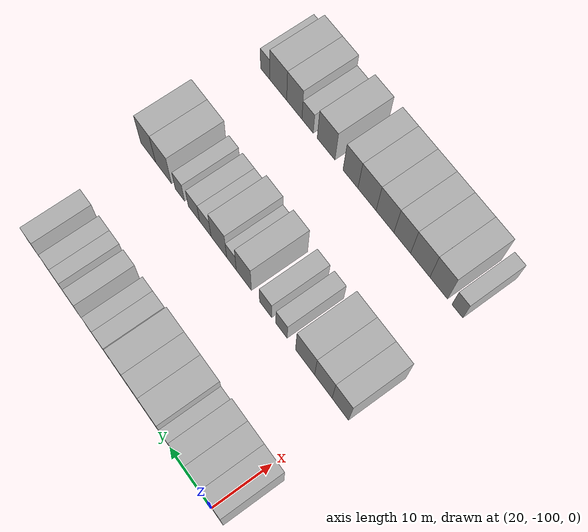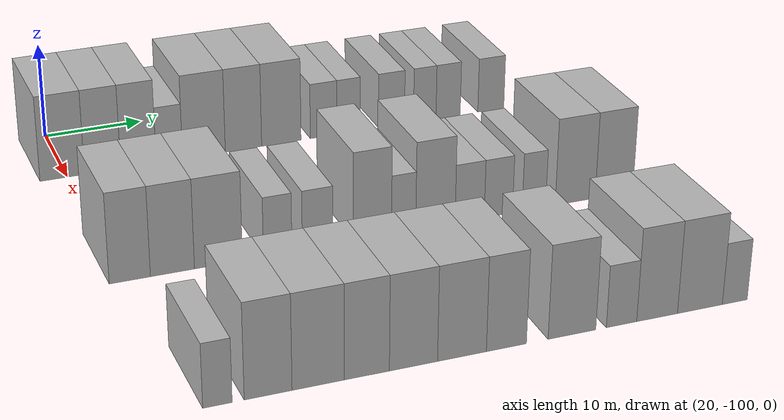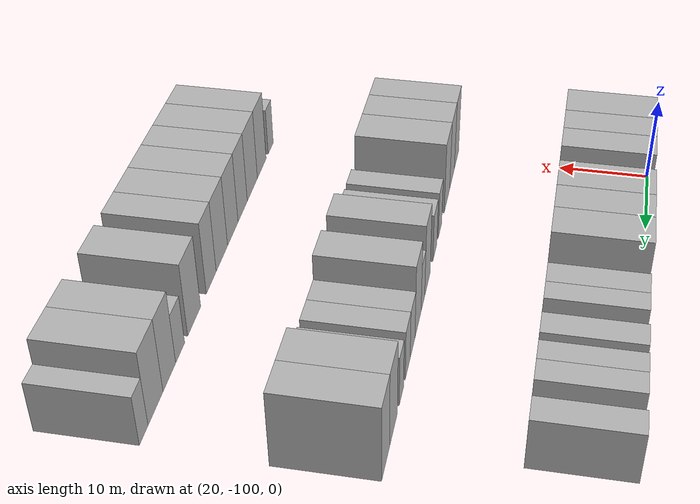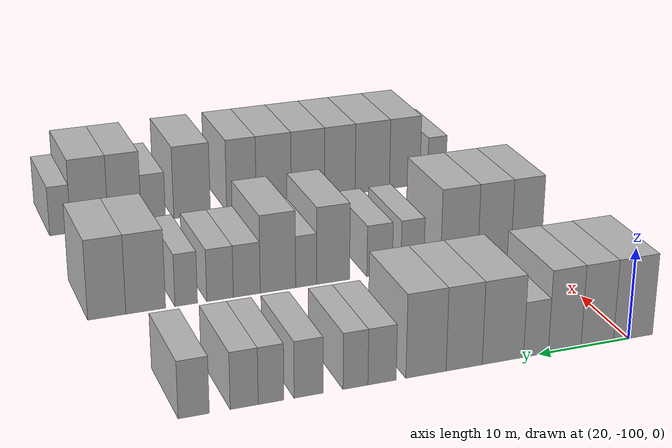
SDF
<sdf version="1.6">
 <world name="default">
  <model name="building_38">
   <static>1</static>
   <pose>25.0000 -100.5047 0 0.000000 0.000000 0.000000</pose>
   <link name="link">
    <pose>0 0 4.50 0 0 0</pose>
    <collision name="collision"><geometry><box><size>10.0000 4.4297 9.0000</size></box></geometry></collision>
    <visual name="visual">
     <cast_shadows>0</cast_shadows>
     <geometry><box><size>10.0000 4.4297 9.0000</size></box></geometry>
     <material>
      <script>
       <uri>model://HANNAS_wall/materials/scripts</uri>
       <uri>model://HANNAS_wall/materials/textures</uri>
       <name>vrc/HANNAS_wall</name>
      </script>
     </material>
    </visual>
   </link>
  </model>
  <model name="building_39">
   <static>1</static>
   <pose>25.0000 -96.4687 0 0.000000 0.000000 0.000000</pose>
   <link name="link">
    <pose>0 0 4.50 0 0 0</pose>
    <collision name="collision"><geometry><box><size>10.0000 3.6423 9.0000</size></box></geometry></collision>
    <visual name="visual">
     <cast_shadows>0</cast_shadows>
     <geometry><box><size>10.0000 3.6423 9.0000</size></box></geometry>
     <material>
      <script>
       <uri>model://HANNAS_wall/materials/scripts</uri>
       <uri>model://HANNAS_wall/materials/textures</uri>
       <name>vrc/HANNAS_wall</name>
      </script>
     </material>
    </visual>
   </link>
  </model>
  <model name="building_40">
   <static>1</static>
   <pose>25.0000 -92.8418 0 0.000000 0.000000 0.000000</pose>
   <link name="link">
    <pose>0 0 4.50 0 0 0</pose>
    <collision name="collision"><geometry><box><size>10.0000 3.6114 9.0000</size></box></geometry></collision>
    <visual name="visual">
     <cast_shadows>0</cast_shadows>
     <geometry><box><size>10.0000 3.6114 9.0000</size></box></geometry>
     <material>
      <script>
       <uri>model://HANNAS_wall/materials/scripts</uri>
       <uri>model://HANNAS_wall/materials/textures</uri>
       <name>vrc/HANNAS_wall</name>
      </script>
     </material>
    </visual>
   </link>
  </model>
  <model name="building_41">
   <static>1</static>
   <pose>25.0000 -89.6788 0 0.000000 0.000000 0.000000</pose>
   <link name="link">
    <pose>0 0 3.00 0 0 0</pose>
    <collision name="collision"><geometry><box><size>10.0000 2.7146 6.0000</size></box></geometry></collision>
    <visual name="visual">
     <cast_shadows>0</cast_shadows>
     <geometry><box><size>10.0000 2.7146 6.0000</size></box></geometry>
     <material>
      <script>
       <uri>model://HANNAS_wall/materials/scripts</uri>
       <uri>model://HANNAS_wall/materials/textures</uri>
       <name>vrc/HANNAS_wall</name>
      </script>
     </material>
    </visual>
   </link>
  </model>
  <model name="building_42">
   <static>1</static>
   <pose>25.0000 -86.0987 0 0.000000 0.000000 0.000000</pose>
   <link name="link">
    <pose>0 0 4.50 0 0 0</pose>
    <collision name="collision"><geometry><box><size>10.0000 4.4457 9.0000</size></box></geometry></collision>
    <visual name="visual">
     <cast_shadows>0</cast_shadows>
     <geometry><box><size>10.0000 4.4457 9.0000</size></box></geometry>
     <material>
      <script>
       <uri>model://HANNAS_wall/materials/scripts</uri>
       <uri>model://HANNAS_wall/materials/textures</uri>
       <name>vrc/HANNAS_wall</name>
      </script>
     </material>
    </visual>
   </link>
  </model>
  <model name="building_43">
   <static>1</static>
   <pose>25.0000 -81.9614 0 0.000000 0.000000 0.000000</pose>
   <link name="link">
    <pose>0 0 4.50 0 0 0</pose>
    <collision name="collision"><geometry><box><size>10.0000 3.8288 9.0000</size></box></geometry></collision>
    <visual name="visual">
     <cast_shadows>0</cast_shadows>
     <geometry><box><size>10.0000 3.8288 9.0000</size></box></geometry>
     <material>
      <script>
       <uri>model://HANNAS_wall/materials/scripts</uri>
       <uri>model://HANNAS_wall/materials/textures</uri>
       <name>vrc/HANNAS_wall</name>
      </script>
     </material>
    </visual>
   </link>
  </model>
  <model name="building_44">
   <static>1</static>
   <pose>25.0000 -77.9471 0 0.000000 0.000000 0.000000</pose>
   <link name="link">
    <pose>0 0 4.50 0 0 0</pose>
    <collision name="collision"><geometry><box><size>10.0000 4.1999 9.0000</size></box></geometry></collision>
    <visual name="visual">
     <cast_shadows>0</cast_shadows>
     <geometry><box><size>10.0000 4.1999 9.0000</size></box></geometry>
     <material>
      <script>
       <uri>model://HANNAS_wall/materials/scripts</uri>
       <uri>model://HANNAS_wall/materials/textures</uri>
       <name>vrc/HANNAS_wall</name>
      </script>
     </material>
    </visual>
   </link>
  </model>
  <model name="building_45">
   <static>1</static>
   <pose>25.0000 -73.4030 0 0.000000 0.000000 0.000000</pose>
   <link name="link">
    <pose>0 0 3.00 0 0 0</pose>
    <collision name="collision"><geometry><box><size>10.0000 2.8882 6.0000</size></box></geometry></collision>
    <visual name="visual">
     <cast_shadows>0</cast_shadows>
     <geometry><box><size>10.0000 2.8882 6.0000</size></box></geometry>
     <material>
      <script>
       <uri>model://HANNAS_wall/materials/scripts</uri>
       <uri>model://HANNAS_wall/materials/textures</uri>
       <name>vrc/HANNAS_wall</name>
      </script>
     </material>
    </visual>
   </link>
  </model>
  <model name="building_46">
   <static>1</static>
   <pose>25.0000 -70.6926 0 0.000000 0.000000 0.000000</pose>
   <link name="link">
    <pose>0 0 3.00 0 0 0</pose>
    <collision name="collision"><geometry><box><size>10.0000 2.5327 6.0000</size></box></geometry></collision>
    <visual name="visual">
     <cast_shadows>0</cast_shadows>
     <geometry><box><size>10.0000 2.5327 6.0000</size></box></geometry>
     <material>
      <script>
       <uri>model://HANNAS_wall/materials/scripts</uri>
       <uri>model://HANNAS_wall/materials/textures</uri>
       <name>vrc/HANNAS_wall</name>
      </script>
     </material>
    </visual>
   </link>
  </model>
  <model name="building_47">
   <static>1</static>
   <pose>25.0000 -65.9847 0 0.000000 0.000000 0.000000</pose>
   <link name="link">
    <pose>0 0 3.00 0 0 0</pose>
    <collision name="collision"><geometry><box><size>10.0000 2.8832 6.0000</size></box></geometry></collision>
    <visual name="visual">
     <cast_shadows>0</cast_shadows>
     <geometry><box><size>10.0000 2.8832 6.0000</size></box></geometry>
     <material>
      <script>
       <uri>model://HANNAS_wall/materials/scripts</uri>
       <uri>model://HANNAS_wall/materials/textures</uri>
       <name>vrc/HANNAS_wall</name>
      </script>
     </material>
    </visual>
   </link>
  </model>
  <model name="building_48">
   <static>1</static>
   <pose>25.0000 -62.2846 0 0.000000 0.000000 0.000000</pose>
   <link name="link">
    <pose>0 0 3.00 0 0 0</pose>
    <collision name="collision"><geometry><box><size>10.0000 2.5170 6.0000</size></box></geometry></collision>
    <visual name="visual">
     <cast_shadows>0</cast_shadows>
     <geometry><box><size>10.0000 2.5170 6.0000</size></box></geometry>
     <material>
      <script>
       <uri>model://HANNAS_wall/materials/scripts</uri>
       <uri>model://HANNAS_wall/materials/textures</uri>
       <name>vrc/HANNAS_wall</name>
      </script>
     </material>
    </visual>
   </link>
  </model>
  <model name="building_49">
   <static>1</static>
   <pose>25.0000 -59.6618 0 0.000000 0.000000 0.000000</pose>
   <link name="link">
    <pose>0 0 3.00 0 0 0</pose>
    <collision name="collision"><geometry><box><size>10.0000 2.7288 6.0000</size></box></geometry></collision>
    <visual name="visual">
     <cast_shadows>0</cast_shadows>
     <geometry><box><size>10.0000 2.7288 6.0000</size></box></geometry>
     <material>
      <script>
       <uri>model://HANNAS_wall/materials/scripts</uri>
       <uri>model://HANNAS_wall/materials/textures</uri>
       <name>vrc/HANNAS_wall</name>
      </script>
     </material>
    </visual>
   </link>
  </model>
  <model name="building_50">
   <static>1</static>
   <pose>25.0000 -54.8117 0 0.000000 0.000000 0.000000</pose>
   <link name="link">
    <pose>0 0 3.00 0 0 0</pose>
    <collision name="collision"><geometry><box><size>10.0000 2.9714 6.0000</size></box></geometry></collision>
    <visual name="visual">
     <cast_shadows>0</cast_shadows>
     <geometry><box><size>10.0000 2.9714 6.0000</size></box></geometry>
     <material>
      <script>
       <uri>model://HANNAS_wall/materials/scripts</uri>
       <uri>model://HANNAS_wall/materials/textures</uri>
       <name>vrc/HANNAS_wall</name>
      </script>
     </material>
    </visual>
   </link>
  </model>
  <model name="building_169">
   <static>1</static>
   <pose>47.0000 -99.4404 0 0.000000 0.000000 0.000000</pose>
   <link name="link">
    <pose>0 0 4.50 0 0 0</pose>
    <collision name="collision"><geometry><box><size>10.0000 3.7632 9.0000</size></box></geometry></collision>
    <visual name="visual">
     <cast_shadows>0</cast_shadows>
     <geometry><box><size>10.0000 3.7632 9.0000</size></box></geometry>
     <material>
      <script>
       <uri>model://HANNAS_wall/materials/scripts</uri>
       <uri>model://HANNAS_wall/materials/textures</uri>
       <name>vrc/HANNAS_wall</name>
      </script>
     </material>
    </visual>
   </link>
  </model>
  <model name="building_170">
   <static>1</static>
   <pose>47.0000 -95.5248 0 0.000000 0.000000 0.000000</pose>
   <link name="link">
    <pose>0 0 4.50 0 0 0</pose>
    <collision name="collision"><geometry><box><size>10.0000 4.0680 9.0000</size></box></geometry></collision>
    <visual name="visual">
     <cast_shadows>0</cast_shadows>
     <geometry><box><size>10.0000 4.0680 9.0000</size></box></geometry>
     <material>
      <script>
       <uri>model://HANNAS_wall/materials/scripts</uri>
       <uri>model://HANNAS_wall/materials/textures</uri>
       <name>vrc/HANNAS_wall</name>
      </script>
     </material>
    </visual>
   </link>
  </model>
  <model name="building_171">
   <static>1</static>
   <pose>47.0000 -91.2450 0 0.000000 0.000000 0.000000</pose>
   <link name="link">
    <pose>0 0 4.50 0 0 0</pose>
    <collision name="collision"><geometry><box><size>10.0000 4.4917 9.0000</size></box></geometry></collision>
    <visual name="visual">
     <cast_shadows>0</cast_shadows>
     <geometry><box><size>10.0000 4.4917 9.0000</size></box></geometry>
     <material>
      <script>
       <uri>model://HANNAS_wall/materials/scripts</uri>
       <uri>model://HANNAS_wall/materials/textures</uri>
       <name>vrc/HANNAS_wall</name>
      </script>
     </material>
    </visual>
   </link>
  </model>
  <model name="building_172">
   <static>1</static>
   <pose>47.0000 -85.6401 0 0.000000 0.000000 0.000000</pose>
   <link name="link">
    <pose>0 0 3.00 0 0 0</pose>
    <collision name="collision"><geometry><box><size>10.0000 2.7181 6.0000</size></box></geometry></collision>
    <visual name="visual">
     <cast_shadows>0</cast_shadows>
     <geometry><box><size>10.0000 2.7181 6.0000</size></box></geometry>
     <material>
      <script>
       <uri>model://HANNAS_wall/materials/scripts</uri>
       <uri>model://HANNAS_wall/materials/textures</uri>
       <name>vrc/HANNAS_wall</name>
      </script>
     </material>
    </visual>
   </link>
  </model>
  <model name="building_173">
   <static>1</static>
   <pose>47.0000 -81.7985 0 0.000000 0.000000 0.000000</pose>
   <link name="link">
    <pose>0 0 3.00 0 0 0</pose>
    <collision name="collision"><geometry><box><size>10.0000 2.9651 6.0000</size></box></geometry></collision>
    <visual name="visual">
     <cast_shadows>0</cast_shadows>
     <geometry><box><size>10.0000 2.9651 6.0000</size></box></geometry>
     <material>
      <script>
       <uri>model://HANNAS_wall/materials/scripts</uri>
       <uri>model://HANNAS_wall/materials/textures</uri>
       <name>vrc/HANNAS_wall</name>
      </script>
     </material>
    </visual>
   </link>
  </model>
  <model name="building_174">
   <static>1</static>
   <pose>47.0000 -76.4386 0 0.000000 0.000000 0.000000</pose>
   <link name="link">
    <pose>0 0 4.50 0 0 0</pose>
    <collision name="collision"><geometry><box><size>10.0000 3.7545 9.0000</size></box></geometry></collision>
    <visual name="visual">
     <cast_shadows>0</cast_shadows>
     <geometry><box><size>10.0000 3.7545 9.0000</size></box></geometry>
     <material>
      <script>
       <uri>model://HANNAS_wall/materials/scripts</uri>
       <uri>model://HANNAS_wall/materials/textures</uri>
       <name>vrc/HANNAS_wall</name>
      </script>
     </material>
    </visual>
   </link>
  </model>
  <model name="building_175">
   <static>1</static>
   <pose>47.0000 -73.3543 0 0.000000 0.000000 0.000000</pose>
   <link name="link">
    <pose>0 0 3.00 0 0 0</pose>
    <collision name="collision"><geometry><box><size>10.0000 2.4141 6.0000</size></box></geometry></collision>
    <visual name="visual">
     <cast_shadows>0</cast_shadows>
     <geometry><box><size>10.0000 2.4141 6.0000</size></box></geometry>
     <material>
      <script>
       <uri>model://HANNAS_wall/materials/scripts</uri>
       <uri>model://HANNAS_wall/materials/textures</uri>
       <name>vrc/HANNAS_wall</name>
      </script>
     </material>
    </visual>
   </link>
  </model>
  <model name="building_176">
   <static>1</static>
   <pose>47.0000 -70.1664 0 0.000000 0.000000 0.000000</pose>
   <link name="link">
    <pose>0 0 4.50 0 0 0</pose>
    <collision name="collision"><geometry><box><size>10.0000 3.9617 9.0000</size></box></geometry></collision>
    <visual name="visual">
     <cast_shadows>0</cast_shadows>
     <geometry><box><size>10.0000 3.9617 9.0000</size></box></geometry>
     <material>
      <script>
       <uri>model://HANNAS_wall/materials/scripts</uri>
       <uri>model://HANNAS_wall/materials/textures</uri>
       <name>vrc/HANNAS_wall</name>
      </script>
     </material>
    </visual>
   </link>
  </model>
  <model name="building_177">
   <static>1</static>
   <pose>47.0000 -66.6986 0 0.000000 0.000000 0.000000</pose>
   <link name="link">
    <pose>0 0 3.00 0 0 0</pose>
    <collision name="collision"><geometry><box><size>10.0000 2.9740 6.0000</size></box></geometry></collision>
    <visual name="visual">
     <cast_shadows>0</cast_shadows>
     <geometry><box><size>10.0000 2.9740 6.0000</size></box></geometry>
     <material>
      <script>
       <uri>model://HANNAS_wall/materials/scripts</uri>
       <uri>model://HANNAS_wall/materials/textures</uri>
       <name>vrc/HANNAS_wall</name>
      </script>
     </material>
    </visual>
   </link>
  </model>
  <model name="building_178">
   <static>1</static>
   <pose>47.0000 -63.7531 0 0.000000 0.000000 0.000000</pose>
   <link name="link">
    <pose>0 0 3.00 0 0 0</pose>
    <collision name="collision"><geometry><box><size>10.0000 2.9171 6.0000</size></box></geometry></collision>
    <visual name="visual">
     <cast_shadows>0</cast_shadows>
     <geometry><box><size>10.0000 2.9171 6.0000</size></box></geometry>
     <material>
      <script>
       <uri>model://HANNAS_wall/materials/scripts</uri>
       <uri>model://HANNAS_wall/materials/textures</uri>
       <name>vrc/HANNAS_wall</name>
      </script>
     </material>
    </visual>
   </link>
  </model>
  <model name="building_179">
   <static>1</static>
   <pose>47.0000 -60.0712 0 0.000000 0.000000 0.000000</pose>
   <link name="link">
    <pose>0 0 3.00 0 0 0</pose>
    <collision name="collision"><geometry><box><size>10.0000 2.4466 6.0000</size></box></geometry></collision>
    <visual name="visual">
     <cast_shadows>0</cast_shadows>
     <geometry><box><size>10.0000 2.4466 6.0000</size></box></geometry>
     <material>
      <script>
       <uri>model://HANNAS_wall/materials/scripts</uri>
       <uri>model://HANNAS_wall/materials/textures</uri>
       <name>vrc/HANNAS_wall</name>
      </script>
     </material>
    </visual>
   </link>
  </model>
  <model name="building_180">
   <static>1</static>
   <pose>47.0000 -55.7364 0 0.000000 0.000000 0.000000</pose>
   <link name="link">
    <pose>0 0 4.50 0 0 0</pose>
    <collision name="collision"><geometry><box><size>10.0000 4.2231 9.0000</size></box></geometry></collision>
    <visual name="visual">
     <cast_shadows>0</cast_shadows>
     <geometry><box><size>10.0000 4.2231 9.0000</size></box></geometry>
     <material>
      <script>
       <uri>model://HANNAS_wall/materials/scripts</uri>
       <uri>model://HANNAS_wall/materials/textures</uri>
       <name>vrc/HANNAS_wall</name>
      </script>
     </material>
    </visual>
   </link>
  </model>
  <model name="building_181">
   <static>1</static>
   <pose>47.0000 -51.6126 0 0.000000 0.000000 0.000000</pose>
   <link name="link">
    <pose>0 0 4.50 0 0 0</pose>
    <collision name="collision"><geometry><box><size>10.0000 4.0244 9.0000</size></box></geometry></collision>
    <visual name="visual">
     <cast_shadows>0</cast_shadows>
     <geometry><box><size>10.0000 4.0244 9.0000</size></box></geometry>
     <material>
      <script>
       <uri>model://HANNAS_wall/materials/scripts</uri>
       <uri>model://HANNAS_wall/materials/textures</uri>
       <name>vrc/HANNAS_wall</name>
      </script>
     </material>
    </visual>
   </link>
  </model>
  <model name="building_285">
   <static>1</static>
   <pose>69.0000 -97.9942 0 0.000000 0.000000 0.000000</pose>
   <link name="link">
    <pose>0 0 3.00 0 0 0</pose>
    <collision name="collision"><geometry><box><size>10.0000 2.4528 6.0000</size></box></geometry></collision>
    <visual name="visual">
     <cast_shadows>0</cast_shadows>
     <geometry><box><size>10.0000 2.4528 6.0000</size></box></geometry>
     <material>
      <script>
       <uri>model://HANNAS_wall/materials/scripts</uri>
       <uri>model://HANNAS_wall/materials/textures</uri>
       <name>vrc/HANNAS_wall</name>
      </script>
     </material>
    </visual>
   </link>
  </model>
  <model name="building_286">
   <static>1</static>
   <pose>69.0000 -93.7496 0 0.000000 0.000000 0.000000</pose>
   <link name="link">
    <pose>0 0 4.50 0 0 0</pose>
    <collision name="collision"><geometry><box><size>10.0000 4.0365 9.0000</size></box></geometry></collision>
    <visual name="visual">
     <cast_shadows>0</cast_shadows>
     <geometry><box><size>10.0000 4.0365 9.0000</size></box></geometry>
     <material>
      <script>
       <uri>model://HANNAS_wall/materials/scripts</uri>
       <uri>model://HANNAS_wall/materials/textures</uri>
       <name>vrc/HANNAS_wall</name>
      </script>
     </material>
    </visual>
   </link>
  </model>
  <model name="building_287">
   <static>1</static>
   <pose>69.0000 -89.4851 0 0.000000 0.000000 0.000000</pose>
   <link name="link">
    <pose>0 0 4.50 0 0 0</pose>
    <collision name="collision"><geometry><box><size>10.0000 4.4924 9.0000</size></box></geometry></collision>
    <visual name="visual">
     <cast_shadows>0</cast_shadows>
     <geometry><box><size>10.0000 4.4924 9.0000</size></box></geometry>
     <material>
      <script>
       <uri>model://HANNAS_wall/materials/scripts</uri>
       <uri>model://HANNAS_wall/materials/textures</uri>
       <name>vrc/HANNAS_wall</name>
      </script>
     </material>
    </visual>
   </link>
  </model>
  <model name="building_288">
   <static>1</static>
   <pose>69.0000 -85.2791 0 0.000000 0.000000 0.000000</pose>
   <link name="link">
    <pose>0 0 4.50 0 0 0</pose>
    <collision name="collision"><geometry><box><size>10.0000 3.9197 9.0000</size></box></geometry></collision>
    <visual name="visual">
     <cast_shadows>0</cast_shadows>
     <geometry><box><size>10.0000 3.9197 9.0000</size></box></geometry>
     <material>
      <script>
       <uri>model://HANNAS_wall/materials/scripts</uri>
       <uri>model://HANNAS_wall/materials/textures</uri>
       <name>vrc/HANNAS_wall</name>
      </script>
     </material>
    </visual>
   </link>
  </model>
  <model name="building_289">
   <static>1</static>
   <pose>69.0000 -81.1873 0 0.000000 0.000000 0.000000</pose>
   <link name="link">
    <pose>0 0 4.50 0 0 0</pose>
    <collision name="collision"><geometry><box><size>10.0000 4.2637 9.0000</size></box></geometry></collision>
    <visual name="visual">
     <cast_shadows>0</cast_shadows>
     <geometry><box><size>10.0000 4.2637 9.0000</size></box></geometry>
     <material>
      <script>
       <uri>model://HANNAS_wall/materials/scripts</uri>
       <uri>model://HANNAS_wall/materials/textures</uri>
       <name>vrc/HANNAS_wall</name>
      </script>
     </material>
    </visual>
   </link>
  </model>
  <model name="building_290">
   <static>1</static>
   <pose>69.0000 -76.8558 0 0.000000 0.000000 0.000000</pose>
   <link name="link">
    <pose>0 0 4.50 0 0 0</pose>
    <collision name="collision"><geometry><box><size>10.0000 4.3994 9.0000</size></box></geometry></collision>
    <visual name="visual">
     <cast_shadows>0</cast_shadows>
     <geometry><box><size>10.0000 4.3994 9.0000</size></box></geometry>
     <material>
      <script>
       <uri>model://HANNAS_wall/materials/scripts</uri>
       <uri>model://HANNAS_wall/materials/textures</uri>
       <name>vrc/HANNAS_wall</name>
      </script>
     </material>
    </visual>
   </link>
  </model>
  <model name="building_291">
   <static>1</static>
   <pose>69.0000 -72.8258 0 0.000000 0.000000 0.000000</pose>
   <link name="link">
    <pose>0 0 4.50 0 0 0</pose>
    <collision name="collision"><geometry><box><size>10.0000 3.6608 9.0000</size></box></geometry></collision>
    <visual name="visual">
     <cast_shadows>0</cast_shadows>
     <geometry><box><size>10.0000 3.6608 9.0000</size></box></geometry>
     <material>
      <script>
       <uri>model://HANNAS_wall/materials/scripts</uri>
       <uri>model://HANNAS_wall/materials/textures</uri>
       <name>vrc/HANNAS_wall</name>
      </script>
     </material>
    </visual>
   </link>
  </model>
  <model name="building_292">
   <static>1</static>
   <pose>69.0000 -66.7672 0 0.000000 0.000000 0.000000</pose>
   <link name="link">
    <pose>0 0 4.50 0 0 0</pose>
    <collision name="collision"><geometry><box><size>10.0000 4.4563 9.0000</size></box></geometry></collision>
    <visual name="visual">
     <cast_shadows>0</cast_shadows>
     <geometry><box><size>10.0000 4.4563 9.0000</size></box></geometry>
     <material>
      <script>
       <uri>model://HANNAS_wall/materials/scripts</uri>
       <uri>model://HANNAS_wall/materials/textures</uri>
       <name>vrc/HANNAS_wall</name>
      </script>
     </material>
    </visual>
   </link>
  </model>
  <model name="building_293">
   <static>1</static>
   <pose>69.0000 -62.0960 0 0.000000 0.000000 0.000000</pose>
   <link name="link">
    <pose>0 0 3.00 0 0 0</pose>
    <collision name="collision"><geometry><box><size>10.0000 2.8861 6.0000</size></box></geometry></collision>
    <visual name="visual">
     <cast_shadows>0</cast_shadows>
     <geometry><box><size>10.0000 2.8861 6.0000</size></box></geometry>
     <material>
      <script>
       <uri>model://HANNAS_wall/materials/scripts</uri>
       <uri>model://HANNAS_wall/materials/textures</uri>
       <name>vrc/HANNAS_wall</name>
      </script>
     </material>
    </visual>
   </link>
  </model>
  <model name="building_294">
   <static>1</static>
   <pose>69.0000 -58.6901 0 0.000000 0.000000 0.000000</pose>
   <link name="link">
    <pose>0 0 4.50 0 0 0</pose>
    <collision name="collision"><geometry><box><size>10.0000 3.9258 9.0000</size></box></geometry></collision>
    <visual name="visual">
     <cast_shadows>0</cast_shadows>
     <geometry><box><size>10.0000 3.9258 9.0000</size></box></geometry>
     <material>
      <script>
       <uri>model://HANNAS_wall/materials/scripts</uri>
       <uri>model://HANNAS_wall/materials/textures</uri>
       <name>vrc/HANNAS_wall</name>
      </script>
     </material>
    </visual>
   </link>
  </model>
  <model name="building_295">
   <static>1</static>
   <pose>69.0000 -54.5335 0 0.000000 0.000000 0.000000</pose>
   <link name="link">
    <pose>0 0 4.50 0 0 0</pose>
    <collision name="collision"><geometry><box><size>10.0000 4.3874 9.0000</size></box></geometry></collision>
    <visual name="visual">
     <cast_shadows>0</cast_shadows>
     <geometry><box><size>10.0000 4.3874 9.0000</size></box></geometry>
     <material>
      <script>
       <uri>model://HANNAS_wall/materials/scripts</uri>
       <uri>model://HANNAS_wall/materials/textures</uri>
       <name>vrc/HANNAS_wall</name>
      </script>
     </material>
    </visual>
   </link>
  </model>
  <model name="building_296">
   <static>1</static>
   <pose>69.0000 -51.1123 0 0.000000 0.000000 0.000000</pose>
   <link name="link">
    <pose>0 0 3.00 0 0 0</pose>
    <collision name="collision"><geometry><box><size>10.0000 2.4550 6.0000</size></box></geometry></collision>
    <visual name="visual">
     <cast_shadows>0</cast_shadows>
     <geometry><box><size>10.0000 2.4550 6.0000</size></box></geometry>
     <material>
      <script>
       <uri>model://HANNAS_wall/materials/scripts</uri>
       <uri>model://HANNAS_wall/materials/textures</uri>
       <name>vrc/HANNAS_wall</name>
      </script>
     </material>
    </visual>
   </link>
  </model>
 </world>
</sdf>
